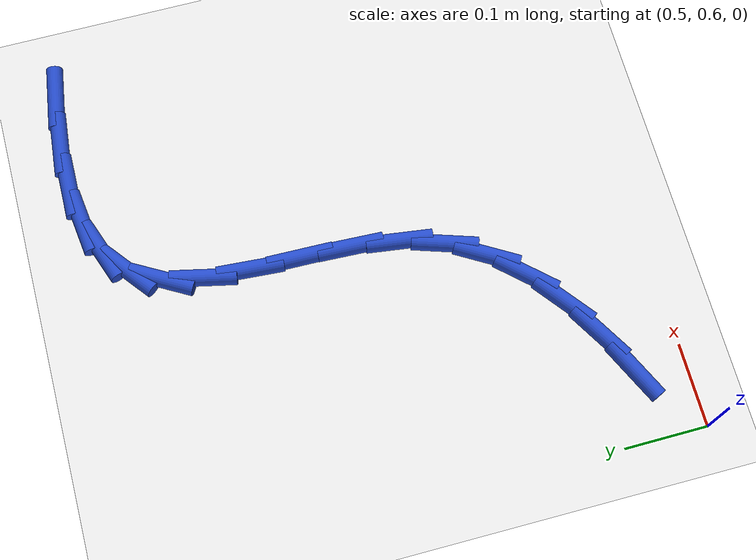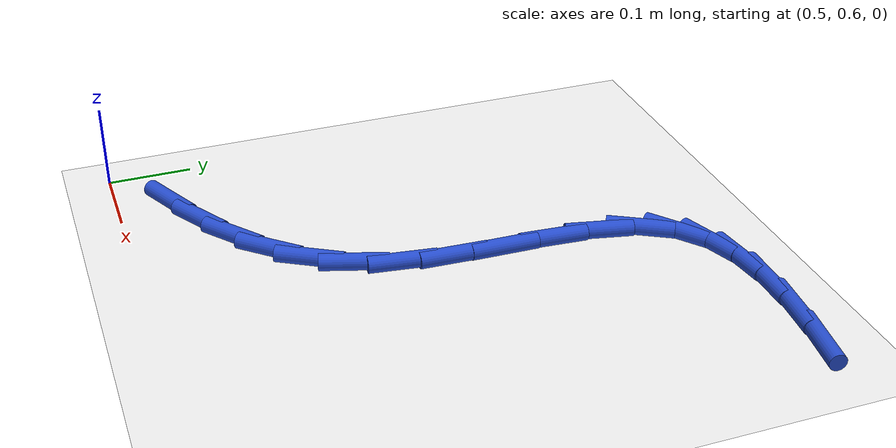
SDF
<sdf version="1.6">
 <world name="default">
  <model name="ground_plane">
   <static>1</static>
   <link name="link">
    <collision name="collision">
     <geometry><plane><normal>0 0 1</normal><size>100 100</size></plane></geometry>
     <surface><friction><ode><mu>100</mu><mu2>50</mu2></ode></friction></surface>
    </collision>
    <visual name="visual">
     <cast_shadows>0</cast_shadows>
     <geometry><plane><normal>0 0 1</normal><size>100 100</size></plane></geometry>
     <material>
      <script><uri>file://media/materials/scripts/gazebo.material</uri><name>Gazebo/WhiteGlow</name></script>
     </material>
    </visual>
   </link>
  </model>
  <model name="line">
   <link name="link_17">
    <pose>0.582342081285251 0.661800793073497 0.01 0 1.57 0.44220395985941413</pose>
    <collision name="collision">
     <geometry><cylinder><radius>0.01</radius><length>0.08</length></cylinder></geometry>
    </collision>
    <visual name="visual">
     <material>
      <script><name>Gazebo/Blue</name><uri>file://media/materials/scripts/gazebo.material</uri></script>
     </material>
     <geometry><cylinder><radius>0.01</radius><length>0.08</length></cylinder></geometry>
    </visual>
   </link>
   <link name="link_18">
    <pose>0.6351212184499933 0.6867904352147214 0.01 0 1.57 0.5337578471949486</pose>
    <collision name="collision">
     <geometry><cylinder><radius>0.01</radius><length>0.08</length></cylinder></geometry>
    </collision>
    <visual name="visual">
     <material>
      <script><name>Gazebo/Blue</name><uri>file://media/materials/scripts/gazebo.material</uri></script>
     </material>
     <geometry><cylinder><radius>0.01</radius><length>0.08</length></cylinder></geometry>
    </visual>
   </link>
   <link name="link_19">
    <pose>0.6831725390730041 0.7151876166438806 0.01 0 1.57 0.6613041256950026</pose>
    <collision name="collision">
     <geometry><cylinder><radius>0.01</radius><length>0.08</length></cylinder></geometry>
    </collision>
    <visual name="visual">
     <material>
      <script><name>Gazebo/Blue</name><uri>file://media/materials/scripts/gazebo.material</uri></script>
     </material>
     <geometry><cylinder><radius>0.01</radius><length>0.08</length></cylinder></geometry>
    </visual>
   </link>
   <link name="link_20">
    <pose>0.7252499343223586 0.7479321060325419 0.01 0 1.57 0.8289191862085481</pose>
    <collision name="collision">
     <geometry><cylinder><radius>0.01</radius><length>0.08</length></cylinder></geometry>
    </collision>
    <visual name="visual">
     <material>
      <script><name>Gazebo/Blue</name><uri>file://media/materials/scripts/gazebo.material</uri></script>
     </material>
     <geometry><cylinder><radius>0.01</radius><length>0.08</length></cylinder></geometry>
    </visual>
   </link>
   <link name="link_21">
    <pose>0.7601072953661319 0.7859636720522722 0.01 0 1.57 1.0331030674142934</pose>
    <collision name="collision">
     <geometry><cylinder><radius>0.01</radius><length>0.08</length></cylinder></geometry>
    </collision>
    <visual name="visual">
     <material>
      <script><name>Gazebo/Blue</name><uri>file://media/materials/scripts/gazebo.material</uri></script>
     </material>
     <geometry><cylinder><radius>0.01</radius><length>0.08</length></cylinder></geometry>
    </visual>
   </link>
   <link name="link_22">
    <pose>0.7864985133724005 0.8302220833746394 0.01 0 1.57 1.2564844759627043</pose>
    <collision name="collision">
     <geometry><cylinder><radius>0.01</radius><length>0.08</length></cylinder></geometry>
    </collision>
    <visual name="visual">
     <material>
      <script><name>Gazebo/Blue</name><uri>file://media/materials/scripts/gazebo.material</uri></script>
     </material>
     <geometry><cylinder><radius>0.01</radius><length>0.08</length></cylinder></geometry>
    </visual>
   </link>
   <link name="link_23">
    <pose>0.8032076199773127 0.881620738814093 0.01 0 1.57 1.4379182021878878</pose>
    <collision name="collision">
     <geometry><cylinder><radius>0.01</radius><length>0.08</length></cylinder></geometry>
    </collision>
    <visual name="visual">
     <material>
      <script><name>Gazebo/Blue</name><uri>file://media/materials/scripts/gazebo.material</uri></script>
     </material>
     <geometry><cylinder><radius>0.01</radius><length>0.08</length></cylinder></geometry>
    </visual>
   </link>
   <link name="link_24">
    <pose>0.8109307471581267 0.939400143032776 0.01 0 1.57 1.5303563521007466</pose>
    <collision name="collision">
     <geometry><cylinder><radius>0.01</radius><length>0.08</length></cylinder></geometry>
    </collision>
    <visual name="visual">
     <material>
      <script><name>Gazebo/Blue</name><uri>file://media/materials/scripts/gazebo.material</uri></script>
     </material>
     <geometry><cylinder><radius>0.01</radius><length>0.08</length></cylinder></geometry>
    </visual>
   </link>
   <link name="link_25">
    <pose>0.8133889827476557 1.000154270668778 0.01 0 1.57 1.5511291409833468</pose>
    <collision name="collision">
     <geometry><cylinder><radius>0.01</radius><length>0.08</length></cylinder></geometry>
    </collision>
    <visual name="visual">
     <material>
      <script><name>Gazebo/Blue</name><uri>file://media/materials/scripts/gazebo.material</uri></script>
     </material>
     <geometry><cylinder><radius>0.01</radius><length>0.08</length></cylinder></geometry>
    </visual>
   </link>
   <link name="link_26">
    <pose>0.8145709125791069 1.0602430627004527 0.01 0 1.57 1.5010999197297845</pose>
    <collision name="collision">
     <geometry><cylinder><radius>0.01</radius><length>0.08</length></cylinder></geometry>
    </collision>
    <visual name="visual">
     <material>
      <script><name>Gazebo/Blue</name><uri>file://media/materials/scripts/gazebo.material</uri></script>
     </material>
     <geometry><cylinder><radius>0.01</radius><length>0.08</length></cylinder></geometry>
    </visual>
   </link>
   <link name="link_27">
    <pose>0.8184651224856869 1.1160264601061534 0.01 0 1.57 1.3528362201876207</pose>
    <collision name="collision">
     <geometry><cylinder><radius>0.01</radius><length>0.08</length></cylinder></geometry>
    </collision>
    <visual name="visual">
     <material>
      <script><name>Gazebo/Blue</name><uri>file://media/materials/scripts/gazebo.material</uri></script>
     </material>
     <geometry><cylinder><radius>0.01</radius><length>0.08</length></cylinder></geometry>
    </visual>
   </link>
   <link name="link_28">
    <pose>0.8290601983006023 1.1638644038642334 0.01 0 1.57 1.050256642923014</pose>
    <collision name="collision">
     <geometry><cylinder><radius>0.01</radius><length>0.08</length></cylinder></geometry>
    </collision>
    <visual name="visual">
     <material>
      <script><name>Gazebo/Blue</name><uri>file://media/materials/scripts/gazebo.material</uri></script>
     </material>
     <geometry><cylinder><radius>0.01</radius><length>0.08</length></cylinder></geometry>
    </visual>
   </link>
   <link name="link_29">
    <pose>0.8500208368602044 1.2004271438908194 0.01 0 1.57 0.6669584662122099</pose>
    <collision name="collision">
     <geometry><cylinder><radius>0.01</radius><length>0.08</length></cylinder></geometry>
    </collision>
    <visual name="visual">
     <material>
      <script><name>Gazebo/Blue</name><uri>file://media/materials/scripts/gazebo.material</uri></script>
     </material>
     <geometry><cylinder><radius>0.01</radius><length>0.08</length></cylinder></geometry>
    </visual>
   </link>
   <link name="link_30">
    <pose>0.8818083837141905 1.2254539708682435 0.01 0 1.57 0.34838797273996663</pose>
    <collision name="collision">
     <geometry><cylinder><radius>0.01</radius><length>0.08</length></cylinder></geometry>
    </collision>
    <visual name="visual">
     <material>
      <script><name>Gazebo/Blue</name><uri>file://media/materials/scripts/gazebo.material</uri></script>
     </material>
     <geometry><cylinder><radius>0.01</radius><length>0.08</length></cylinder></geometry>
    </visual>
   </link>
   <link name="link_31">
    <pose>0.9230563702762906 1.2404353527910792 0.01 0 1.57 0.12997595618460264</pose>
    <collision name="collision">
     <geometry><cylinder><radius>0.01</radius><length>0.08</length></cylinder></geometry>
    </collision>
    <visual name="visual">
     <material>
      <script><name>Gazebo/Blue</name><uri>file://media/materials/scripts/gazebo.material</uri></script>
     </material>
     <geometry><cylinder><radius>0.01</radius><length>0.08</length></cylinder></geometry>
    </visual>
   </link>
   <link name="link_32">
    <pose>0.9723769980258046 1.2468821932641252 0.01 0 1.57 -0.010298582900003274</pose>
    <collision name="collision">
     <geometry><cylinder><radius>0.01</radius><length>0.08</length></cylinder></geometry>
    </collision>
    <visual name="visual">
     <material>
      <script><name>Gazebo/Blue</name><uri>file://media/materials/scripts/gazebo.material</uri></script>
     </material>
     <geometry><cylinder><radius>0.01</radius><length>0.08</length></cylinder></geometry>
    </visual>
   </link>
   <link name="link_33">
    <pose>1.0283824684420317 1.2463053958921804 0.01 0 1.57 -0.09901094173558654</pose>
    <collision name="collision">
     <geometry><cylinder><radius>0.01</radius><length>0.08</length></cylinder></geometry>
    </collision>
    <visual name="visual">
     <material>
      <script><name>Gazebo/Blue</name><uri>file://media/materials/scripts/gazebo.material</uri></script>
     </material>
     <geometry><cylinder><radius>0.01</radius><length>0.08</length></cylinder></geometry>
    </visual>
   </link>
   <link name="link_34">
    <pose>1.0896849830042714 1.2402158642800432 0.01 0 1.57 -0.15352979537831013</pose>
    <collision name="collision">
     <geometry><cylinder><radius>0.01</radius><length>0.08</length></cylinder></geometry>
    </collision>
    <visual name="visual">
     <material>
      <script><name>Gazebo/Blue</name><uri>file://media/materials/scripts/gazebo.material</uri></script>
     </material>
     <geometry><cylinder><radius>0.01</radius><length>0.08</length></cylinder></geometry>
    </visual>
   </link>
  </model>
 </world>
</sdf>
